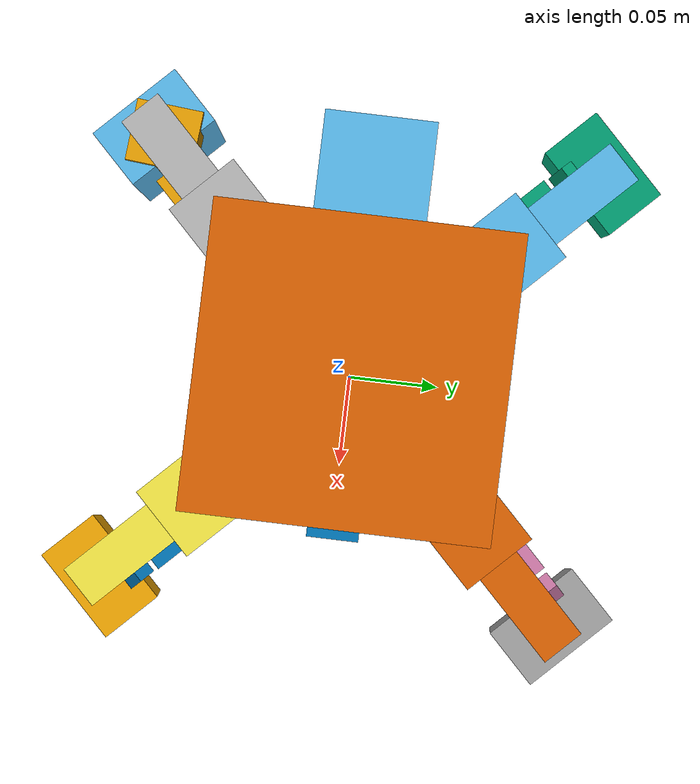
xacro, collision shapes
<?xml version="1.0" encoding="utf-8"?>
<robot xmlns:xacro="http://www.ros.org/wiki/xacro" name="Robot">
    <xacro:arg name="config_controllers" default="$(find spider)/config/spider_controllers.yaml"/>
    <xacro:include filename="$(find spider)/urdf/Robot.urdf"/>
    <xacro:include filename="$(find spider)/urdf/Robot_sensors.urdf.xacro"/>
</robot>

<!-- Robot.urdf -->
<robot name="Robot">
  <!--Generated by RobotCAD, a ROS Workbench for FreeCAD (https://github.com/drfenixion/freecad.robotcad)-->
  <link name="base_footprint">
  </link>
  <link name="l_Spider_trail001">
    <visual>
      <!--Spider_trail001/Spider_trail001.-->
      <origin rpy="0 0 3.141592653589793" xyz="0.0144527 0.000805453 -0.0565"/>
      <geometry>
        <mesh filename="package://spider/meshes/robotcad_simple_parts_spider_trail_qdkuwm.dae"/>
      </geometry>
    </visual>
    <collision>
      <!--col__l_Spider_trail001__col_Spider_trail__BoundBox/col_Spider_trail__BoundBox.-->
      <origin rpy="0 0 0" xyz="-0.0240473 5.54532e-05 0.0155"/>
      <geometry>
        <box size="0.179 0.05700000000000002 0.031"/>
      </geometry>
    </collision>
    <inertial>
      <mass value="0.294"/>
      <origin rpy="0 0 0" xyz="0.0 0.0 0.0"/>
      <inertia ixx="0.000083" ixy="0.0" ixz="0.0" iyy="0.000083" iyz="0.0" izz="0.000083"/>
    </inertial>
  </link>
  <link name="base_link">
    <visual>
      <!--Spider_base001/Spider_base001.-->
      <origin rpy="0 0 0" xyz="0 0 0"/>
      <geometry>
        <mesh filename="package://spider/meshes/robotcad_simple_parts_spider_base_monhri.dae"/>
      </geometry>
    </visual>
    <collision>
      <!--col__base_link__col_Spider_base__BoundBox/col_Spider_base__BoundBox.-->
      <origin rpy="0 0 0" xyz="0.0 0.0 0.0"/>
      <geometry>
        <box size="0.11317322158813477 0.11317322158813477 0.014693019866943359"/>
      </geometry>
    </collision>
  </link>
  <link name="l_SG_base001">
    <visual>
      <!--SG_base001/SG_base001.-->
      <origin rpy="0 0 0" xyz="-0.0008725 -0.0054 -0.01816"/>
      <geometry>
        <mesh filename="package://spider/meshes/robotcad_simple_parts_sg_base_b572c8.dae"/>
      </geometry>
    </visual>
    <collision>
      <!--col__l_SG_base001__col_SG_base__BoundBox/col_SG_base__BoundBox.-->
      <origin rpy="0 0 0" xyz="0.0109475 0.00052 -0.00402"/>
      <geometry>
        <box size="0.03215000057220459 0.01184000015258789 0.028280000686645507"/>
      </geometry>
    </collision>
    <inertial>
      <mass value="0.012"/>
      <origin rpy="0 0 0" xyz="0.0 0.0 0.0"/>
      <inertia ixx="0.000083" ixy="0.0" ixz="0.0" iyy="0.000083" iyz="0.0" izz="0.000083"/>
    </inertial>
  </link>
  <link name="l_Spider_camera_module004">
    <visual>
      <!--Spider_camera_module004/Spider_camera_module005.-->
      <origin rpy="0 0.0320177076978226 0" xyz="-0.0772411 -0.0005 -0.070064"/>
      <geometry>
        <mesh filename="package://spider/meshes/robotcad_simple_parts_spider_camera_module003_cewph9.dae"/>
      </geometry>
    </visual>
    <collision>
      <!--col__l_Spider_camera_module004__col_Spider_camera_module004__BoundBox/col_Spider_camera_module004__BoundBox.-->
      <origin rpy="0 0.0320177076978226 0" xyz="-0.000915109 0.0 0.00803265"/>
      <geometry>
        <box size="0.018426376342773436 0.026 0.019"/>
      </geometry>
    </collision>
    <inertial>
      <mass value="0.001"/>
      <origin rpy="0 0 0" xyz="0.0 0.0 0.0"/>
      <inertia ixx="0.000083" ixy="0.0" ixz="0.0" iyy="0.000083" iyz="0.0" izz="0.000083"/>
    </inertial>
  </link>
  <link name="l_Spider_cupula_superior_camera004">
    <visual>
      <!--Spider_cupula_superior_camera004/Spider_cupula_superior_camera005.-->
      <origin rpy="0 0 0" xyz="0.011 -0.011 -0.1425"/>
      <geometry>
        <mesh filename="package://spider/meshes/robotcad_simple_parts_spider_cupula_superior_camera003_ep25yw.dae"/>
      </geometry>
    </visual>
    <collision>
      <!--col__l_Spider_cupula_superior_camera004__col_Spider_cupula_superior_camera004__BoundBox/col_Spider_cupula_superior_camera004__BoundBox.-->
      <origin rpy="0 0 0" xyz="0.011 -0.011 -0.0345202"/>
      <geometry>
        <box size="0.15 0.14995338439941405 0.0747596206665039"/>
      </geometry>
    </collision>
    <inertial>
      <mass value="0.220"/>
      <origin rpy="0 0 0" xyz="0.0 0.0 0.0"/>
      <inertia ixx="0.000083" ixy="0.0" ixz="0.0" iyy="0.000083" iyz="0.0" izz="0.000083"/>
    </inertial>
  </link>
  <link name="l_Spider_cupula_in_servo_25T_5_005">
    <visual>
      <!--Spider_cupula_in_servo_25T_5_005/Spider_cupula_in_servo_25T_5_006.-->
      <origin rpy="0 0 0" xyz="0.0 0.0 -0.074087"/>
      <geometry>
        <mesh filename="package://spider/meshes/robotcad_simple_parts_spider_cupula_in_servo_25t_5_004_ehdugy.dae"/>
      </geometry>
    </visual>
    <inertial>
      <mass value="0.061"/>
      <origin rpy="0 0 0" xyz="0.0 0.0 0.0"/>
      <inertia ixx="0.000083" ixy="0.0" ixz="0.0" iyy="0.000083" iyz="0.0" izz="0.000083"/>
    </inertial>
  </link>
  <link name="l_Spider_hip_backright001">
    <visual>
      <!--Spider_hip_backright001/Spider_hip_backright001.-->
      <origin rpy="0 0 0" xyz="0.0 -0.04175 -0.042"/>
      <geometry>
        <mesh filename="package://spider/meshes/robotcad_simple_parts_spider_hip_backright_luxmtj.dae"/>
      </geometry>
    </visual>
    <collision>
      <!--col__l_Spider_hip_backright001__col_Spider_hip_backright__BoundBox/col_Spider_hip_backright__BoundBox.-->
      <origin rpy="0 0 0" xyz="-0.0015 -0.02525 -0.021"/>
      <geometry>
        <box size="0.027 0.057 0.042"/>
      </geometry>
    </collision>
    <inertial>
      <mass value="0.022"/>
      <origin rpy="0 0 0" xyz="0.0 0.0 0.0"/>
      <inertia ixx="0.000083" ixy="0.0" ixz="0.0" iyy="0.000083" iyz="0.0" izz="0.000083"/>
    </inertial>
  </link>
  <link name="l_SG_hip_back_right001">
    <visual>
      <!--SG_hip_back_right001/SG_hip_back_right001.-->
      <origin rpy="0 0 0" xyz="-0.019 -0.00592 -0.02828"/>
      <geometry>
        <mesh filename="package://spider/meshes/robotcad_simple_parts_sg_hip_back_right_fdelkm.dae"/>
      </geometry>
    </visual>
    <collision>
      <!--col__l_SG_hip_back_right001__col_SG_hip_back_right__BoundBox/col_SG_hip_back_right__BoundBox.-->
      <origin rpy="0 0 0" xyz="-0.00718 0.0 -0.01414"/>
      <geometry>
        <box size="0.03215000057220459 0.01184000015258789 0.028280000686645507"/>
      </geometry>
    </collision>
    <inertial>
      <mass value="0.012"/>
      <origin rpy="0 0 0" xyz="0.0 0.0 0.0"/>
      <inertia ixx="0.000083" ixy="0.0" ixz="0.0" iyy="0.000083" iyz="0.0" izz="0.000083"/>
    </inertial>
  </link>
  <link name="l_SG_hip_back_left001">
    <visual>
      <!--SG_hip_back_left001/SG_hip_back_left001.-->
      <origin rpy="0 0 0" xyz="-0.019 -0.00592 -0.02828"/>
      <geometry>
        <mesh filename="package://spider/meshes/robotcad_simple_parts_sg_hip_back_left_5euasu.dae"/>
      </geometry>
    </visual>
    <collision>
      <!--col__l_SG_hip_back_left001__col_SG_hip_back_left__BoundBox/col_SG_hip_back_left__BoundBox.-->
      <origin rpy="0 0 0" xyz="-0.00718 0.0 -0.01414"/>
      <geometry>
        <box size="0.03215000057220459 0.01184000015258789 0.028280000686645507"/>
      </geometry>
    </collision>
    <inertial>
      <mass value="0.012"/>
      <origin rpy="0 0 0" xyz="0.0 0.0 0.0"/>
      <inertia ixx="0.000083" ixy="0.0" ixz="0.0" iyy="0.000083" iyz="0.0" izz="0.000083"/>
    </inertial>
  </link>
  <link name="l_Spider_hip_backleft001">
    <visual>
      <!--Spider_hip_backleft001/Spider_hip_backleft001.-->
      <origin rpy="0 0 0" xyz="0.0 -0.04175 -0.042"/>
      <geometry>
        <mesh filename="package://spider/meshes/robotcad_simple_parts_spider_hip_backleft_tgmhk1.dae"/>
      </geometry>
    </visual>
    <collision>
      <!--col__l_Spider_hip_backleft001__col_Spider_hip_backleft__BoundBox/col_Spider_hip_backleft__BoundBox.-->
      <origin rpy="0 0 0" xyz="-0.0015 -0.02525 -0.021"/>
      <geometry>
        <box size="0.027 0.057 0.042"/>
      </geometry>
    </collision>
    <inertial>
      <mass value="0.022"/>
      <origin rpy="0 0 0" xyz="0.0 0.0 0.0"/>
      <inertia ixx="0.000083" ixy="0.0" ixz="0.0" iyy="0.000083" iyz="0.0" izz="0.000083"/>
    </inertial>
  </link>
  <link name="l_Spider_hip_frontright001">
    <visual>
      <!--Spider_hip_frontright001/Spider_hip_frontright001.-->
      <origin rpy="0 0 0" xyz="9.15879e-05 -0.0417476 -0.042"/>
      <geometry>
        <mesh filename="package://spider/meshes/robotcad_simple_parts_spider_hip_frontright_r7e61f.dae"/>
      </geometry>
    </visual>
    <collision>
      <!--col__l_Spider_hip_frontright001__col_Spider_hip_frontright__BoundBox/col_Spider_hip_frontright__BoundBox.-->
      <origin rpy="0 0 0" xyz="-0.00140841 -0.0252476 -0.021"/>
      <geometry>
        <box size="0.027 0.057 0.042"/>
      </geometry>
    </collision>
    <inertial>
      <mass value="0.022"/>
      <origin rpy="0 0 0" xyz="0.0 0.0 0.0"/>
      <inertia ixx="0.000083" ixy="0.0" ixz="0.0" iyy="0.000083" iyz="0.0" izz="0.000083"/>
    </inertial>
  </link>
  <link name="l_SG_hip_front_right001">
    <visual>
      <!--SG_hip_front_right001/SG_hip_front_right001.-->
      <origin rpy="0 0 0" xyz="-0.019 -0.00592 -0.02828"/>
      <geometry>
        <mesh filename="package://spider/meshes/robotcad_simple_parts_sg_hip_front_right_s1hwve.dae"/>
      </geometry>
    </visual>
    <collision>
      <!--col__l_SG_hip_front_right001__col_SG_hip_front_right__BoundBox/col_SG_hip_front_right__BoundBox.-->
      <origin rpy="0 0 0" xyz="-0.00718 0.0 -0.01414"/>
      <geometry>
        <box size="0.03215000057220459 0.01184000015258789 0.028280000686645507"/>
      </geometry>
    </collision>
    <inertial>
      <mass value="0.012"/>
      <origin rpy="0 0 0" xyz="0.0 0.0 0.0"/>
      <inertia ixx="0.000083" ixy="0.0" ixz="0.0" iyy="0.000083" iyz="0.0" izz="0.000083"/>
    </inertial>
  </link>
  <link name="l_Spider_hip_frontleft001">
    <visual>
      <!--Spider_hip_frontleft001/Spider_hip_frontleft001.-->
      <origin rpy="0 0 0" xyz="0.0 -0.04175 -0.042"/>
      <geometry>
        <mesh filename="package://spider/meshes/robotcad_simple_parts_spider_hip_frontleft_rgxnoo.dae"/>
      </geometry>
    </visual>
    <collision>
      <!--col__l_Spider_hip_frontleft001__col_Spider_hip_frontleft__BoundBox/col_Spider_hip_frontleft__BoundBox.-->
      <origin rpy="0 0 0" xyz="-0.0015 -0.02525 -0.021"/>
      <geometry>
        <box size="0.027 0.057 0.042"/>
      </geometry>
    </collision>
    <inertial>
      <mass value="0.022"/>
      <origin rpy="0 0 0" xyz="0.0 0.0 0.0"/>
      <inertia ixx="0.000083" ixy="0.0" ixz="0.0" iyy="0.000083" iyz="0.0" izz="0.000083"/>
    </inertial>
  </link>
  <link name="l_SG_hip_front_left001">
    <visual>
      <!--SG_hip_front_left001/SG_hip_front_left001.-->
      <origin rpy="0 0 0" xyz="-0.019 -0.00592 -0.02828"/>
      <geometry>
        <mesh filename="package://spider/meshes/robotcad_simple_parts_sg_hip_front_left_oclyju.dae"/>
      </geometry>
    </visual>
    <collision>
      <!--col__l_SG_hip_front_left001__col_SG_hip_front_left__BoundBox/col_SG_hip_front_left__BoundBox.-->
      <origin rpy="0 0 0" xyz="-0.00718 0.0 -0.01414"/>
      <geometry>
        <box size="0.03215000057220459 0.01184000015258789 0.028280000686645507"/>
      </geometry>
    </collision>
    <inertial>
      <mass value="0.012"/>
      <origin rpy="0 0 0" xyz="0.0 0.0 0.0"/>
      <inertia ixx="0.000083" ixy="0.0" ixz="0.0" iyy="0.000083" iyz="0.0" izz="0.000083"/>
    </inertial>
  </link>
  <link name="l_Spider_hipleg_backright001">
    <visual>
      <!--Spider_hipleg_backright001/Spider_hipleg_backright001.-->
      <origin rpy="0 0 0" xyz="0.00568485 -0.000145071 -0.022"/>
      <geometry>
        <mesh filename="package://spider/meshes/robotcad_simple_parts_spider_hipleg_backright_pe2cqp.dae"/>
      </geometry>
    </visual>
    <collision>
      <!--col__l_Spider_hipleg_backright001__col_Spider_hipleg_backright__BoundBox/col_Spider_hipleg_backright__BoundBox.-->
      <origin rpy="0 0 0" xyz="-0.0109703 -0.000145071 -0.01"/>
      <geometry>
        <box size="0.061189601898193356 0.0425 0.024"/>
      </geometry>
    </collision>
    <inertial>
      <mass value="0.015"/>
      <origin rpy="0 0 0" xyz="0.0 0.0 0.0"/>
      <inertia ixx="0.000083" ixy="0.0" ixz="0.0" iyy="0.000083" iyz="0.0" izz="0.000083"/>
    </inertial>
  </link>
  <link name="l_SG_leg_back_right001">
    <visual>
      <!--SG_leg_back_right001/SG_leg_back_right001.-->
      <origin rpy="0 0 0" xyz="-0.015 -0.00592 -0.02828"/>
      <geometry>
        <mesh filename="package://spider/meshes/robotcad_simple_parts_sg_leg_back_right_5utyh4.dae"/>
      </geometry>
    </visual>
    <collision>
      <!--col__l_SG_leg_back_right001__col_SG_leg_back_right__BoundBox/col_SG_leg_back_right__BoundBox.-->
      <origin rpy="0 0 0" xyz="-0.00318 0.0 -0.01414"/>
      <geometry>
        <box size="0.03215000057220459 0.01184000015258789 0.028280000686645507"/>
      </geometry>
    </collision>
    <inertial>
      <mass value="0.012"/>
      <origin rpy="0 0 0" xyz="0.0 0.0 0.0"/>
      <inertia ixx="0.000083" ixy="0.0" ixz="0.0" iyy="0.000083" iyz="0.0" izz="0.000083"/>
    </inertial>
  </link>
  <link name="l_Spider_hipleg_backleft001">
    <visual>
      <!--Spider_hipleg_backleft001/Spider_hipleg_backleft001.-->
      <origin rpy="0 0 0" xyz="0.00568485 -0.000145071 -0.022"/>
      <geometry>
        <mesh filename="package://spider/meshes/robotcad_simple_parts_spider_hipleg_backleft_obk77e.dae"/>
      </geometry>
    </visual>
    <collision>
      <!--col__l_Spider_hipleg_backleft001__col_Spider_hipleg_backleft__BoundBox/col_Spider_hipleg_backleft__BoundBox.-->
      <origin rpy="0 0 0" xyz="-0.0109703 -0.000145071 -0.01"/>
      <geometry>
        <box size="0.061189601898193356 0.0425 0.024"/>
      </geometry>
    </collision>
    <inertial>
      <mass value="0.015"/>
      <origin rpy="0 0 0" xyz="0.0 0.0 0.0"/>
      <inertia ixx="0.000083" ixy="0.0" ixz="0.0" iyy="0.000083" iyz="0.0" izz="0.000083"/>
    </inertial>
  </link>
  <link name="l_SG_leg_back_left001">
    <visual>
      <!--SG_leg_back_left001/SG_leg_back_left001.-->
      <origin rpy="0 0 0" xyz="-0.015 -0.00592 -0.02828"/>
      <geometry>
        <mesh filename="package://spider/meshes/robotcad_simple_parts_sg_leg_back_left_lz21vq.dae"/>
      </geometry>
    </visual>
    <collision>
      <!--col__l_SG_leg_back_left001__col_SG_leg_back_left__BoundBox/col_SG_leg_back_left__BoundBox.-->
      <origin rpy="0 0 0" xyz="-0.00318 0.0 -0.01414"/>
      <geometry>
        <box size="0.03215000057220459 0.01184000015258789 0.028280000686645507"/>
      </geometry>
    </collision>
    <inertial>
      <mass value="0.012"/>
      <origin rpy="0 0 0" xyz="0.0 0.0 0.0"/>
      <inertia ixx="0.000083" ixy="0.0" ixz="0.0" iyy="0.000083" iyz="0.0" izz="0.000083"/>
    </inertial>
  </link>
  <link name="l_Spider_hipleg_frontright001">
    <visual>
      <!--Spider_hipleg_frontright001/Spider_hipleg_frontright001.-->
      <origin rpy="0 0 0" xyz="0.00568485 -0.000145071 -0.022"/>
      <geometry>
        <mesh filename="package://spider/meshes/robotcad_simple_parts_spider_hipleg_frontright_gtg3oi.dae"/>
      </geometry>
    </visual>
    <collision>
      <!--col__l_Spider_hipleg_frontright001__col_Spider_hipleg_frontright__BoundBox/col_Spider_hipleg_frontright__BoundBox.-->
      <origin rpy="0 0 0" xyz="-0.0109703 -0.000145071 -0.01"/>
      <geometry>
        <box size="0.061189601898193356 0.0425 0.024"/>
      </geometry>
    </collision>
    <inertial>
      <mass value="0.015"/>
      <origin rpy="0 0 0" xyz="0.0 0.0 0.0"/>
      <inertia ixx="0.000083" ixy="0.0" ixz="0.0" iyy="0.000083" iyz="0.0" izz="0.000083"/>
    </inertial>
  </link>
  <link name="l_SG_leg_front_right001">
    <visual>
      <!--SG_leg_front_right001/SG_leg_front_right001.-->
      <origin rpy="0 0 0" xyz="-0.015 -0.00592 -0.02828"/>
      <geometry>
        <mesh filename="package://spider/meshes/robotcad_simple_parts_sg_leg_front_right_txxlih.dae"/>
      </geometry>
    </visual>
    <collision>
      <!--col__l_SG_leg_front_right001__col_SG_leg_front_right__BoundBox/col_SG_leg_front_right__BoundBox.-->
      <origin rpy="0 0 0" xyz="-0.00318 0.0 -0.01414"/>
      <geometry>
        <box size="0.03215000057220459 0.01184000015258789 0.028280000686645507"/>
      </geometry>
    </collision>
    <inertial>
      <mass value="0.012"/>
      <origin rpy="0 0 0" xyz="0.0 0.0 0.0"/>
      <inertia ixx="0.000083" ixy="0.0" ixz="0.0" iyy="0.000083" iyz="0.0" izz="0.000083"/>
    </inertial>
  </link>
  <link name="l_Spider_hipleg_frontleft001">
    <visual>
      <!--Spider_hipleg_frontleft001/Spider_hipleg_frontleft001.-->
      <origin rpy="0 0 0" xyz="0.00568485 -0.000145071 -0.022"/>
      <geometry>
        <mesh filename="package://spider/meshes/robotcad_simple_parts_spider_hipleg_frontleft_vysar6.dae"/>
      </geometry>
    </visual>
    <collision>
      <!--col__l_Spider_hipleg_frontleft001__col_Spider_hipleg_frontleft__BoundBox/col_Spider_hipleg_frontleft__BoundBox.-->
      <origin rpy="0 0 0" xyz="-0.0109703 -0.000145071 -0.01"/>
      <geometry>
        <box size="0.061189601898193356 0.0425 0.024"/>
      </geometry>
    </collision>
    <inertial>
      <mass value="0.015"/>
      <origin rpy="0 0 0" xyz="0.0 0.0 0.0"/>
      <inertia ixx="0.000083" ixy="0.0" ixz="0.0" iyy="0.000083" iyz="0.0" izz="0.000083"/>
    </inertial>
  </link>
  <link name="l_SG_leg_front_left001">
    <visual>
      <!--SG_leg_front_left001/SG_leg_front_left001.-->
      <origin rpy="0 0 0" xyz="-0.015 -0.00592 -0.02828"/>
      <geometry>
        <mesh filename="package://spider/meshes/robotcad_simple_parts_sg_leg_front_left_1neb7v.dae"/>
      </geometry>
    </visual>
    <collision>
      <!--col__l_SG_leg_front_left001__col_SG_leg_front_left__BoundBox/col_SG_leg_front_left__BoundBox.-->
      <origin rpy="0 0 0" xyz="-0.00318 0.0 -0.01414"/>
      <geometry>
        <box size="0.03215000057220459 0.01184000015258789 0.028280000686645507"/>
      </geometry>
    </collision>
    <inertial>
      <mass value="0.012"/>
      <origin rpy="0 0 0" xyz="0.0 0.0 0.0"/>
      <inertia ixx="0.000083" ixy="0.0" ixz="0.0" iyy="0.000083" iyz="0.0" izz="0.000083"/>
    </inertial>
  </link>
  <link name="l_Spider_leg_backright001">
    <visual>
      <!--Spider_leg_backright001/Spider_leg_backright001.-->
      <origin rpy="-1.5707963267948963 -1.5707963267948961 0" xyz="-0.0041101 -0.01225 0.02235"/>
      <geometry>
        <mesh filename="package://spider/meshes/robotcad_simple_parts_spider_leg_backright_lrtlkg.dae"/>
      </geometry>
    </visual>
    <collision>
      <!--col__l_Spider_leg_backright001__col_Spider_leg_backright__BoundBox/col_Spider_leg_backright__BoundBox.-->
      <origin rpy="-1.5707963267948963 -1.5707963267948961 0" xyz="0.00910683 -0.00025 -0.00585612"/>
      <geometry>
        <box size="0.07363168144226075 0.041541129112243655 0.024"/>
      </geometry>
    </collision>
    <inertial>
      <mass value="0.017"/>
      <origin rpy="0 0 0" xyz="0.0 0.0 0.0"/>
      <inertia ixx="0.000083" ixy="0.0" ixz="0.0" iyy="0.000083" iyz="0.0" izz="0.000083"/>
    </inertial>
  </link>
  <link name="l_SG_foot_back_right001">
    <visual>
      <!--SG_foot_back_right001/SG_foot_back_right001.-->
      <origin rpy="0 0 0.6981317007977319" xyz="-0.011054 -0.01592 0.000642788"/>
      <geometry>
        <mesh filename="package://spider/meshes/robotcad_simple_parts_sg_foot_back_right_ncknri.dae"/>
      </geometry>
    </visual>
    <collision>
      <!--col__l_SG_foot_back_right001__col_SG_foot_back_right__BoundBox/col_SG_foot_back_right__BoundBox.-->
      <origin rpy="-1.5707963267948966 -0.6981317007977316 0" xyz="-0.00497123 -0.00378727 0.0117896"/>
      <geometry>
        <box size="0.03530946667937766 0.0325389757123584 0.029735588342646075"/>
      </geometry>
    </collision>
    <inertial>
      <mass value="0.012"/>
      <origin rpy="0 0 0" xyz="0.0 0.0 0.0"/>
      <inertia ixx="0.000083" ixy="0.0" ixz="0.0" iyy="0.000083" iyz="0.0" izz="0.000083"/>
    </inertial>
  </link>
  <link name="l_Spider_leg_backleft001">
    <visual>
      <!--Spider_leg_backleft001/Spider_leg_backleft001.-->
      <origin rpy="0 0 0" xyz="0.0107247 -0.00394229 -0.022"/>
      <geometry>
        <mesh filename="package://spider/meshes/robotcad_simple_parts_spider_leg_backleft_lcqqwg.dae"/>
      </geometry>
    </visual>
    <collision>
      <!--col__l_Spider_leg_backleft001__col_Spider_leg_backleft__BoundBox/col_Spider_leg_backleft__BoundBox.-->
      <origin rpy="0 0 0" xyz="-0.0174815 0.00927465 -0.01"/>
      <geometry>
        <box size="0.07363168144226075 0.041541129112243655 0.024"/>
      </geometry>
    </collision>
    <inertial>
      <mass value="0.017"/>
      <origin rpy="0 0 0" xyz="0.0 0.0 0.0"/>
      <inertia ixx="0.000083" ixy="0.0" ixz="0.0" iyy="0.000083" iyz="0.0" izz="0.000083"/>
    </inertial>
  </link>
  <link name="l_SG_foot_back_left001">
    <visual>
      <!--SG_foot_back_left001/SG_foot_back_left001.-->
      <origin rpy="-1.5707963267948961 -1.5707963267948963 0" xyz="-0.00592 -0.00828 0.0"/>
      <geometry>
        <mesh filename="package://spider/meshes/robotcad_simple_parts_sg_foot_back_left_mesfke.dae"/>
      </geometry>
    </visual>
    <collision>
      <!--col__l_SG_foot_back_left001__col_SG_foot_back_left__BoundBox/col_SG_foot_back_left__BoundBox.-->
      <origin rpy="-1.5707963267948961 -1.5707963267948963 0" xyz="0.0 0.00586 0.01182"/>
      <geometry>
        <box size="0.03215000057220459 0.01184000015258789 0.028280000686645507"/>
      </geometry>
    </collision>
    <inertial>
      <mass value="0.012"/>
      <origin rpy="0 0 0" xyz="0.0 0.0 0.0"/>
      <inertia ixx="0.000083" ixy="0.0" ixz="0.0" iyy="0.000083" iyz="0.0" izz="0.000083"/>
    </inertial>
  </link>
  <link name="l_Spider_leg_frontright001">
    <visual>
      <!--Spider_leg_frontright001/Spider_leg_frontright001.-->
      <origin rpy="0 0 0" xyz="0.0107247 -0.00394229 -0.022"/>
      <geometry>
        <mesh filename="package://spider/meshes/robotcad_simple_parts_spider_leg_frontright_4yyn4h.dae"/>
      </geometry>
    </visual>
    <collision>
      <!--col__l_Spider_leg_frontright001__col_Spider_leg_frontright__BoundBox/col_Spider_leg_frontright__BoundBox.-->
      <origin rpy="0 0 0" xyz="-0.0174815 0.00927465 -0.01"/>
      <geometry>
        <box size="0.07363168144226075 0.041541129112243655 0.024"/>
      </geometry>
    </collision>
    <inertial>
      <mass value="0.017"/>
      <origin rpy="0 0 0" xyz="0.0 0.0 0.0"/>
      <inertia ixx="0.000083" ixy="0.0" ixz="0.0" iyy="0.000083" iyz="0.0" izz="0.000083"/>
    </inertial>
  </link>
  <link name="l_SG_foot_front_right001">
    <visual>
      <!--SG_foot_front_right001/SG_foot_front_right001.-->
      <origin rpy="-1.5707963267948963 -1.5707963267948961 0" xyz="-0.00592 -0.00828 0.0"/>
      <geometry>
        <mesh filename="package://spider/meshes/robotcad_simple_parts_sg_foot_front_right_2f7ujs.dae"/>
      </geometry>
    </visual>
    <collision>
      <!--col__l_SG_foot_front_right001__col_SG_foot_front_right__BoundBox/col_SG_foot_front_right__BoundBox.-->
      <origin rpy="-1.5707963267948963 -1.5707963267948961 0" xyz="0.0 0.00586 0.01182"/>
      <geometry>
        <box size="0.03215000057220459 0.01184000015258789 0.028280000686645507"/>
      </geometry>
    </collision>
    <inertial>
      <mass value="0.012"/>
      <origin rpy="0 0 0" xyz="0.0 0.0 0.0"/>
      <inertia ixx="0.000083" ixy="0.0" ixz="0.0" iyy="0.000083" iyz="0.0" izz="0.000083"/>
    </inertial>
  </link>
  <link name="l_Spider_leg_frontleft001">
    <visual>
      <!--Spider_leg_frontleft001/Spider_leg_frontleft001.-->
      <origin rpy="0 0 0" xyz="0.0107247 -0.00394229 -0.022"/>
      <geometry>
        <mesh filename="package://spider/meshes/robotcad_simple_parts_spider_leg_frontleft_jyrr3v.dae"/>
      </geometry>
    </visual>
    <collision>
      <!--col__l_Spider_leg_frontleft001__col_Spider_leg_frontleft__BoundBox/col_Spider_leg_frontleft__BoundBox.-->
      <origin rpy="0 0 0" xyz="-0.0174815 0.00927465 -0.01"/>
      <geometry>
        <box size="0.07363168144226075 0.041541129112243655 0.024"/>
      </geometry>
    </collision>
    <inertial>
      <mass value="0.017"/>
      <origin rpy="0 0 0" xyz="0.0 0.0 0.0"/>
      <inertia ixx="0.000083" ixy="0.0" ixz="0.0" iyy="0.000083" iyz="0.0" izz="0.000083"/>
    </inertial>
  </link>
  <link name="l_SG_foot_front_left001">
    <visual>
      <!--SG_foot_front_left001/SG_foot_front_left001.-->
      <origin rpy="-1.570796326794896 -1.5707963267948961 0" xyz="-0.00592 -0.00828 0.0"/>
      <geometry>
        <mesh filename="package://spider/meshes/robotcad_simple_parts_sg_foot_front_left_sx0cyl.dae"/>
      </geometry>
    </visual>
    <collision>
      <!--col__l_SG_foot_front_left001__col_SG_foot_front_left__BoundBox/col_SG_foot_front_left__BoundBox.-->
      <origin rpy="-1.570796326794896 -1.5707963267948961 0" xyz="0.0 0.00586 0.01182"/>
      <geometry>
        <box size="0.03215000057220459 0.01184000015258789 0.028280000686645507"/>
      </geometry>
    </collision>
    <inertial>
      <mass value="0.012"/>
      <origin rpy="0 0 0" xyz="0.0 0.0 0.0"/>
      <inertia ixx="0.000083" ixy="0.0" ixz="0.0" iyy="0.000083" iyz="0.0" izz="0.000083"/>
    </inertial>
  </link>
  <link name="l_Spider_foot_frontleft001">
    <visual>
      <!--Spider_foot_frontleft001/Spider_foot_frontleft001.-->
      <origin rpy="1.570796326794897 0 -1.0471975511965976" xyz="-0.000214978 2.81452e-05 -0.00625"/>
      <geometry>
        <mesh filename="package://spider/meshes/robotcad_simple_parts_spider_foot_frontleft_twfqzz.dae"/>
      </geometry>
      <material name="gray">
          <color rgba="0.6 0.6 0.6 1.0"/>
      </material>
    </visual>
    <collision>
      <!--col__l_Spider_foot_frontleft001__col_Spider_foot_frontleft__BoundBox/col_Spider_foot_frontleft__BoundBox.-->
      <origin rpy="1.570796326794897 0 -1.0471975511965976" xyz="0.0309048 0.0232785 0.0156888"/>
      <geometry>
        <box size="0.03414908027648926 0.05486522340774536 0.10214860916137695"/>
      </geometry>
    </collision>
    <inertial>
      <mass value="0.031"/>
      <origin rpy="0 0 0" xyz="0.0 0.0 0.0"/>
      <inertia ixx="0.000083" ixy="0.0" ixz="0.0" iyy="0.000083" iyz="0.0" izz="0.000083"/>
    </inertial>
  </link>
  <link name="l_Spider_foot_frontright001">
    <visual>
      <!--Spider_foot_frontright001/Spider_foot_frontright001.-->
      <origin rpy="1.5707963267948968 0 0" xyz="-0.000131863 -0.000172104 -0.00625"/>
      <geometry>
        <mesh filename="package://spider/meshes/robotcad_simple_parts_spider_foot_frontright_kumujr.dae"/>
      </geometry>
    </visual>
    <collision>
      <!--col__l_Spider_foot_frontright001__col_Spider_foot_frontright__BoundBox/col_Spider_foot_frontright__BoundBox.-->
      <origin rpy="1.5707963267948968 0 0" xyz="-0.00470732 0.0384036 0.0156888"/>
      <geometry>
        <box size="0.03414908027648926 0.05486522340774536 0.10214860916137695"/>
      </geometry>
    </collision>
    <inertial>
      <mass value="0.031"/>
      <origin rpy="0 0 0" xyz="0.0 0.0 0.0"/>
      <inertia ixx="0.000083" ixy="0.0" ixz="0.0" iyy="0.000083" iyz="0.0" izz="0.000083"/>
    </inertial>
  </link>
  <link name="l_Spider_foot_backright001">
    <visual>
      <!--Spider_foot_backright001/Spider_foot_backright001.-->
      <origin rpy="1.5707963267948968 0 0" xyz="-0.000131863 -0.000172104 -0.00625"/>
      <geometry>
        <mesh filename="package://spider/meshes/robotcad_simple_parts_spider_foot_backright_3sides.dae"/>
      </geometry>
    </visual>
    <collision>
      <!--col__l_Spider_foot_backright001__col_Spider_foot_backright__BoundBox/col_Spider_foot_backright__BoundBox.-->
      <origin rpy="1.5707963267948968 0 0" xyz="-0.00470732 0.0384036 0.0156888"/>
      <geometry>
        <box size="0.03414908027648926 0.05486522340774536 0.10214860916137695"/>
      </geometry>
    </collision>
    <inertial>
      <mass value="0.031"/>
      <origin rpy="0 0 0" xyz="0.0 0.0 0.0"/>
      <inertia ixx="0.000083" ixy="0.0" ixz="0.0" iyy="0.000083" iyz="0.0" izz="0.000083"/>
    </inertial>
  </link>
  <link name="l_Spider_foot_backleft001">
    <visual>
      <!--Spider_foot_backleft001/Spider_foot_backleft001.-->
      <origin rpy="1.5707963267948968 0 0" xyz="-0.000131863 -0.000172104 -0.00625"/>
      <geometry>
        <mesh filename="package://spider/meshes/robotcad_simple_parts_spider_foot_backleft_93slyp.dae"/>
      </geometry>
    </visual>
    <collision>
      <!--col__l_Spider_foot_backleft001__col_Spider_foot_backleft__BoundBox/col_Spider_foot_backleft__BoundBox.-->
      <origin rpy="1.5707963267948968 0 0" xyz="-0.00470732 0.0384036 0.0156888"/>
      <geometry>
        <box size="0.03414908027648926 0.05486522340774536 0.10214860916137695"/>
      </geometry>
    </collision>
    <inertial>
      <mass value="0.031"/>
      <origin rpy="0 0 0" xyz="0.0 0.0 0.0"/>
      <inertia ixx="0.000083" ixy="0.0" ixz="0.0" iyy="0.000083" iyz="0.0" izz="0.000083"/>
    </inertial>
  </link>

  <joint name="base_to_footprint" type="fixed">
      <parent link="base_footprint"/>
      <child link="base_link"/>

      <origin xyz="0 0 0.075 " rpy="0 0 0"/>
  </joint>

  <joint name="base_link__to__l_Spider_trail001" type="fixed">
    <parent link="base_link"/>
    <child link="l_Spider_trail001"/>
    <origin rpy="0 0 0" xyz="-0.016857 0.000684 0.0565"/>
  </joint>
  <joint name="base_link__to__l_SG_base001" type="fixed">
    <parent link="base_link"/>
    <child link="l_SG_base001"/>
    <origin rpy="0 0 0" xyz="-0.016857 0.000684 0.0645"/>
  </joint>
  <joint name="base_to_cupula" type="revolute">
    <parent link="l_SG_base001"/>
    <child link="l_Spider_cupula_in_servo_25T_5_005"/>
    <origin rpy="0 0 0" xyz="0.0161275 0.00052 0.01012"/>
    <axis xyz="0 0 1"/>
    <limit effort="0.22" lower="-3.141592653589793" upper="3.141592653589793" velocity="10.0"/>
  </joint>
  <joint name="l_Spider_cupula_in_servo_25T_5_005__to__l_Spider_cupula_superior_camera004" type="fixed">
    <parent link="l_Spider_cupula_in_servo_25T_5_005"/>
    <child link="l_Spider_cupula_superior_camera004"/>
    <origin rpy="0 0 0" xyz="-0.011 0.011 0.068413"/>
  </joint>
  <joint name="l_Spider_cupula_superior_camera004__to__l_Spider_camera_module004" type="fixed">
    <parent link="l_Spider_cupula_superior_camera004"/>
    <child link="l_Spider_camera_module004"/>
    <origin rpy="0 -0.0246003908527461 0" xyz="0.0859546 -0.011 -0.0700557"/>
  </joint>
  <joint name="base_link__to__l_Spider_hip_backright001" type="fixed">
    <parent link="base_link"/>
    <child link="l_Spider_hip_backright001"/>
    <origin rpy="0 0 -0.7853981633974484" xyz="-0.02479 -0.02357 0.05131"/>
  </joint>
  <joint name="hip_backright" type="revolute">
    <parent link="l_Spider_hip_backright001"/>
    <child link="l_SG_hip_back_right001"/>
    <origin rpy="3.141592653589793 0 1.5707963267948963" xyz="0.0 -0.04275 -0.039"/>
    <axis xyz="0 0 1"/>
    <limit effort="0.22" lower="-1.57" upper="1.57" velocity="10.0"/>
  </joint>
  <joint name="base_link__to__l_Spider_hip_backleft001" type="fixed">
    <parent link="base_link"/>
    <child link="l_Spider_hip_backleft001"/>
    <origin rpy="0 0 -2.356194490192345" xyz="-0.02479 0.02499 0.05131"/>
  </joint>
  <joint name="hip_backleft" type="revolute">
    <parent link="l_Spider_hip_backleft001"/>
    <child link="l_SG_hip_back_left001"/>
    <origin rpy="3.141592653589793 0 1.5707963267948963" xyz="0.0 -0.0425 -0.039"/>
    <axis xyz="0 0 1"/>
    <limit effort="0.22" lower="-1.57" upper="1.57" velocity="10.0"/>
  </joint>
  <joint name="base_link__to__l_Spider_hip_frontright001" type="fixed">
    <parent link="base_link"/>
    <child link="l_Spider_hip_frontright001"/>
    <origin rpy="0 0 0.7853981633974484" xyz="0.02381 -0.02321 0.05131"/>
  </joint>
  <joint name="hip_frontright" type="revolute">
    <parent link="l_Spider_hip_frontright001"/>
    <child link="l_SG_hip_front_right001"/>
    <origin rpy="3.141592653589793 0 1.5707963267948963" xyz="0.0 -0.0425 -0.039"/>
    <axis xyz="0 0 1"/>
    <limit effort="0.22" lower="-1.57" upper="1.57" velocity="10.0"/>
  </joint>
  <joint name="base_link__to__l_Spider_hip_frontleft001" type="fixed">
    <parent link="base_link"/>
    <child link="l_Spider_hip_frontleft001"/>
    <origin rpy="0 0 2.356194490192345" xyz="0.02381 0.02462 0.05131"/>
  </joint>
  <joint name="hip_frontleft" type="revolute">
    <parent link="l_Spider_hip_frontleft001"/>
    <child link="l_SG_hip_front_left001"/>
    <origin rpy="3.141592653589793 0 1.5707963267948963" xyz="0.0 -0.0425 -0.039"/>
    <axis xyz="0 0 1"/>
    <limit effort="0.22" lower="-1.57" upper="1.57" velocity="10.0"/>
  </joint>
  <joint name="l_SG_hip_back_right001__to__l_Spider_hipleg_backright001" type="fixed">
    <parent link="l_SG_hip_back_right001"/>
    <child link="l_Spider_hipleg_backright001"/>
    <origin rpy="3.141592653589793 0 0" xyz="-0.00718 0.0 -0.02828"/>
  </joint>
  <joint name="leg_backright" type="revolute">
    <parent link="l_Spider_hipleg_backright001"/>
    <child link="l_SG_leg_back_right001"/>
    <origin rpy="1.5707963267948963 0 0" xyz="-0.03857 -0.0175 -0.01"/>
    <axis xyz="0 0 1"/>
    <limit effort="0.22" lower="-1.57" upper="1.57" velocity="10.0"/>
  </joint>
  <joint name="l_SG_hip_back_left001__to__l_Spider_hipleg_backleft001" type="fixed">
    <parent link="l_SG_hip_back_left001"/>
    <child link="l_Spider_hipleg_backleft001"/>
    <origin rpy="3.141592653589793 0 0" xyz="-0.00718 0.0 -0.02828"/>
  </joint>
  <joint name="leg_backleft" type="revolute">
    <parent link="l_Spider_hipleg_backleft001"/>
    <child link="l_SG_leg_back_left001"/>
    <origin rpy="1.5707963267948963 0 0" xyz="-0.03856 -0.0175 -0.00984"/>
    <axis xyz="0 0 1"/>
    <limit effort="0.22" lower="-1.57" upper="1.57" velocity="10.0"/>
  </joint>
  <joint name="l_SG_hip_front_right001__to__l_Spider_hipleg_frontright001" type="fixed">
    <parent link="l_SG_hip_front_right001"/>
    <child link="l_Spider_hipleg_frontright001"/>
    <origin rpy="3.141592653589793 0 0" xyz="-0.00718 0.0 -0.02828"/>
  </joint>
  <joint name="leg_frontright" type="revolute">
    <parent link="l_Spider_hipleg_frontright001"/>
    <child link="l_SG_leg_front_right001"/>
    <origin rpy="1.5707963267948963 0 0" xyz="-0.03857 -0.0175 -0.01"/>
    <axis xyz="0 0 1"/>
    <limit effort="0.22" lower="-1.57" upper="1.57" velocity="10.0"/>
  </joint>
  <joint name="l_SG_hip_front_left001__to__l_Spider_hipleg_frontleft001" type="fixed">
    <parent link="l_SG_hip_front_left001"/>
    <child link="l_Spider_hipleg_frontleft001"/>
    <origin rpy="3.141592653589793 0 0" xyz="-0.00718 0.0 -0.02828"/>
  </joint>
  <joint name="leg_frontleft" type="revolute">
    <parent link="l_Spider_hipleg_frontleft001"/>
    <child link="l_SG_leg_front_left001"/>
    <origin rpy="1.5707963267948963 0 0" xyz="-0.03856 -0.0175 -0.01016"/>
    <axis xyz="0 0 1"/>
    <limit effort="0.22" lower="-1.57" upper="1.57" velocity="10.0"/>
  </joint>
  <joint name="l_SG_leg_back_right001__to__l_Spider_leg_backright001" type="fixed">
    <parent link="l_SG_leg_back_right001"/>
    <child link="l_Spider_leg_backright001"/>
    <origin rpy="-1.5707963267948966 0 -1.5707963267948966" xyz="-0.01136 0.0 -0.017"/>
  </joint>
  <joint name="l_Spider_leg_backright001__to__l_SG_foot_back_right001" type="fixed">
    <parent link="l_Spider_leg_backright001"/>
    <child link="l_SG_foot_back_right001"/>
    <origin rpy="1.5707963267948966 1.5707963267948966 0" xyz="0.01588 0.01275 -0.02965"/>
  </joint>
  <joint name="l_SG_leg_back_left001__to__l_Spider_leg_backleft001" type="fixed">
    <parent link="l_SG_leg_back_left001"/>
    <child link="l_Spider_leg_backleft001"/>
    <origin rpy="3.141592653589793 0 0" xyz="-0.00318 0.0 -0.02828"/>
  </joint>
  <joint name="l_Spider_leg_backleft001__to__l_SG_foot_back_left001" type="fixed">
    <parent link="l_Spider_leg_backleft001"/>
    <child link="l_SG_foot_back_left001"/>
    <origin rpy="-1.5707963267948968 0 0.872664625997165" xyz="-0.02727 0.0057 -0.00775"/>
  </joint>
  <joint name="l_SG_leg_front_right001__to__l_Spider_leg_frontright001" type="fixed">
    <parent link="l_SG_leg_front_right001"/>
    <child link="l_Spider_leg_frontright001"/>
    <origin rpy="3.141592653589793 0 0" xyz="-0.00318 0.0 -0.02828"/>
  </joint>
  <joint name="l_Spider_leg_frontright001__to__l_SG_foot_front_right001" type="fixed">
    <parent link="l_Spider_leg_frontright001"/>
    <child link="l_SG_foot_front_right001"/>
    <origin rpy="-1.5707963267948966 0 0.8726646259971649" xyz="-0.02727 0.0057 -0.00775"/>
  </joint>
  <joint name="l_SG_leg_front_left001__to__l_Spider_leg_frontleft001" type="fixed">
    <parent link="l_SG_leg_front_left001"/>
    <child link="l_Spider_leg_frontleft001"/>
    <origin rpy="3.141592653589793 0 0" xyz="-0.00318 0.0 -0.02828"/>
  </joint>
  <joint name="l_Spider_leg_frontleft001__to__l_SG_foot_front_left001" type="fixed">
    <parent link="l_Spider_leg_frontleft001"/>
    <child link="l_SG_foot_front_left001"/>
    <origin rpy="-1.5707963267948963 0 0.8726646259971647" xyz="-0.02727 0.0057 -0.00775"/>
  </joint>
  <joint name="foot_frontleft" type="revolute">
    <parent link="l_SG_foot_front_left001"/>
    <child link="l_Spider_foot_frontleft001"/>
    <origin rpy="1.5707963267948963 -0.2705980500730985 0" xyz="0.0 0.02 0.017"/>
    <axis xyz="0 0 1"/>
    <limit effort="0.22" lower="-1.57" upper="1.57" velocity="10.0"/>
  </joint>
  <joint name="foot_frontright" type="revolute">
    <parent link="l_SG_foot_front_right001"/>
    <child link="l_Spider_foot_frontright001"/>
    <origin rpy="1.5707963267948963 0.7853981633974483 0" xyz="0.0 0.02 0.017"/>
    <axis xyz="0 0 1"/>
    <limit effort="0.22" lower="-1.57" upper="1.57" velocity="10.0"/>
  </joint>
  <joint name="foot_backright" type="revolute">
    <parent link="l_SG_foot_back_right001"/>
    <child link="l_Spider_foot_backright001"/>
    <origin rpy="-3.1415926535897927 0 -3.141592653589793" xyz="-0.00184 -0.00046 0.02892"/>
    <axis xyz="0 0 1"/>
    <limit effort="0.22" lower="-1.57" upper="1.57" velocity="10.0"/>
  </joint>
  <joint name="foot_backleft" type="revolute">
    <parent link="l_SG_foot_back_left001"/>
    <child link="l_Spider_foot_backleft001"/>
    <origin rpy="1.5707963267948963 0.7853981633974483 0" xyz="0.0 0.02 0.017"/>
    <axis xyz="0 0 1"/>
    <limit effort="0.22" lower="-1.57" upper="1.57" velocity="10.0"/>
  </joint>

  <gazebo>
      <plugin filename="libgz_ros2_control-system.so"
          name="gz_ros2_control::GazeboSimROS2ControlPlugin">
          <parameters>$(arg config_controllers)</parameters>
      </plugin>
  </gazebo>

  <ros2_control name="spider_hw" type="system">
    <hardware>
      <plugin>gz_ros2_control/GazeboSimSystem</plugin>
    </hardware>
    <joint name="base_to_cupula">
        <command_interface name="position" />

        <state_interface name="position" />
        <state_interface name="velocity" />
        <state_interface name="effort" />
    </joint>

    <joint name="hip_backright">
        <command_interface name="position" />

        <state_interface name="position" />
        <state_interface name="velocity" />
        <state_interface name="effort" />
    </joint>

    <joint name="hip_backleft">
        <command_interface name="position" />

        <state_interface name="position" />
        <state_interface name="velocity" />
        <state_interface name="effort" />
    </joint>

    <joint name="hip_frontright">
        <command_interface name="position" />

        <state_interface name="position" />
        <state_interface name="velocity" />
        <state_interface name="effort" />
    </joint>

    <joint name="hip_frontleft">
        <command_interface name="position" />

        <state_interface name="position" />
        <state_interface name="velocity" />
        <state_interface name="effort" />
    </joint>

    <joint name="leg_backright">
        <command_interface name="position" />

        <state_interface name="position" />
        <state_interface name="velocity" />
        <state_interface name="effort" />
    </joint>

    <joint name="leg_backleft">
        <command_interface name="position" />

        <state_interface name="position" />
        <state_interface name="velocity" />
        <state_interface name="effort" />
    </joint>

    <joint name="leg_frontright">
        <command_interface name="position" />

        <state_interface name="position" />
        <state_interface name="velocity" />
        <state_interface name="effort" />
    </joint>

    <joint name="leg_frontleft">
        <command_interface name="position" />

        <state_interface name="position" />
        <state_interface name="velocity" />
        <state_interface name="effort" />
    </joint>

    <joint name="foot_frontleft">
        <command_interface name="position" />

        <state_interface name="position" />
        <state_interface name="velocity" />
        <state_interface name="effort" />
    </joint>

    <joint name="foot_frontright">
        <command_interface name="position" />

        <state_interface name="position" />
        <state_interface name="velocity" />
        <state_interface name="effort" />
    </joint>

    <joint name="foot_backright">
        <command_interface name="position" />

        <state_interface name="position" />
        <state_interface name="velocity" />
        <state_interface name="effort" />
    </joint>

    <joint name="foot_backleft">
        <command_interface name="position" />

        <state_interface name="position" />
        <state_interface name="velocity" />
        <state_interface name="effort" />
    </joint>
  </ros2_control>
</robot>

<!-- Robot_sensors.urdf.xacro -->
<robot xmlns:xacro="http://www.ros.org/wiki/xacro">
    <!-- LIDAR -->
    <link name="laser_link"/>
    <joint name="base_link_to_laser" type="fixed">
        <parent link="base_link"/>
        <child link="laser_link"/>
        <origin xyz="0 0 0.15" rpy="0 0 0"/>
    </joint>
    <gazebo reference="laser_link">
        <sensor name="lidar_180" type="gpu_lidar">
            <pose>0 0 0 0 0 0</pose>
            <topic>/lidar_180/scan</topic>
            <update_rate>20</update_rate>
            <lidar>
                <scan>
                <horizontal>
                    <samples>360</samples>
                    <min_angle>-1.570796</min_angle>
                    <max_angle>1.570796</max_angle>
                </horizontal>
                </scan>
                <range>
                <min>0.05</min>
                <max>10.0</max>
                <resolution>0.01</resolution>
                </range>
            </lidar>
            <visualize>true</visualize>
            <always_on>1</always_on>
        </sensor>
    </gazebo>

    <!-- IMU -->
    <link name="imu_link"/>
    <joint name="base_link_to_imu" type="fixed">
        <parent link="base_link"/>
        <child link="imu_link"/>
        <origin xyz="0 0 0.1" rpy="0 0 0"/>
    </joint>
    <gazebo reference="imu_link">
        <sensor name="imu_sensor" type="imu">
        <pose>0 0 0 0 0 0</pose>
        <always_on>1</always_on>
        <update_rate>50</update_rate>
        <topic>/imu_sensor/data</topic>
            <imu>
                <angular_velocity>
                <x>true</x><y>true</y><z>true</z>
                </angular_velocity>
                <linear_acceleration>
                <x>true</x><y>true</y><z>true</z>
                </linear_acceleration>
            </imu>
        </sensor>

    </gazebo>

    <!-- Camera -->
    <link name="camera_link"/>
    <joint name="base_link_to_camera" type="fixed">
        <parent link="l_Spider_camera_module004"/>
        <child link="camera_link"/>
        <origin xyz="0.0 0 0.0" rpy="0 0 0"/>
    </joint>
    <gazebo reference="camera_link">
        <sensor name="camera_front" type="camera">
            <pose>0 0 0 0 0 0</pose>
            <always_on>1</always_on>
            <update_rate>30</update_rate>
            <camera>
                <horizontal_fov>1.047</horizontal_fov>
                <image>
                    <width>640</width>
                    <height>480</height>
                    <format>R8G8B8</format>
                </image>
                <clip>
                    <near>0.1</near>
                    <far>100</far>
                </clip>
            </camera>
            <topic>/camera_front/image</topic>
            <visualize>true</visualize>
        </sensor>

    </gazebo>

</robot>
